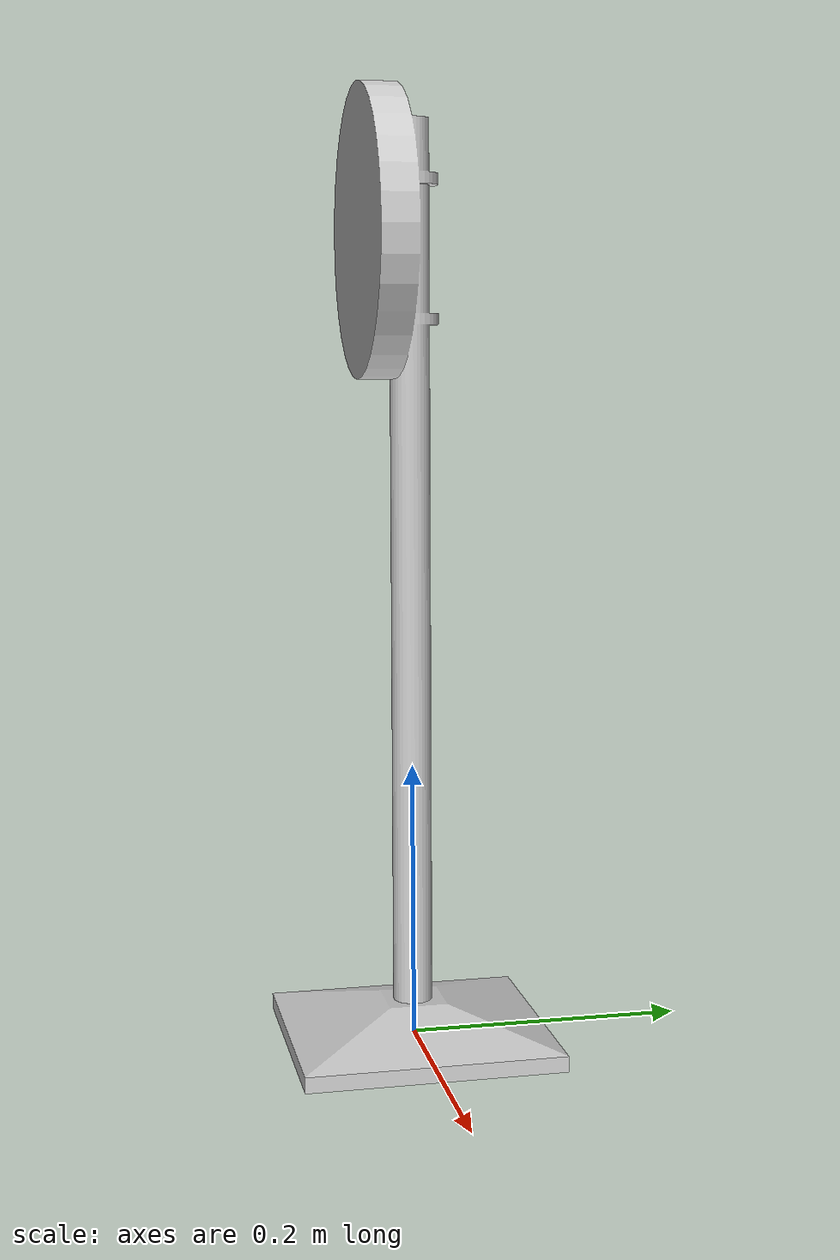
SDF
<?xml version='1.0'?>
<sdf version='1.7'>
  <model name='mandotory_left'>
    <model name='signs'>
      <static>1</static>
      <pose>4e-06 2e-06 0 0 -0 0</pose>
      <link name='zorunlu_yon_sol'>
        <pose>0 0 0 0 -0 0</pose>
        <visual name='sign'>
          <geometry>
            <mesh>
              <scale>0.25 0.25 0.25</scale>
              <uri>model://zorunlu_yon_sol/meshes/zorunlu_yon_sol.dae</uri>
            </mesh>
          </geometry>
        </visual>
        <collision name='collision'>
          <geometry>
            <mesh>
              <scale>0.25 0.25 0.25</scale>
              <uri>model://zorunlu_yon_sol/meshes/zorunlu_yon_sol.dae</uri>
            </mesh>
          </geometry>
        </collision>
      </link>
    </model>
    <static>0</static>
    <allow_auto_disable>1</allow_auto_disable>
  </model>
</sdf>
